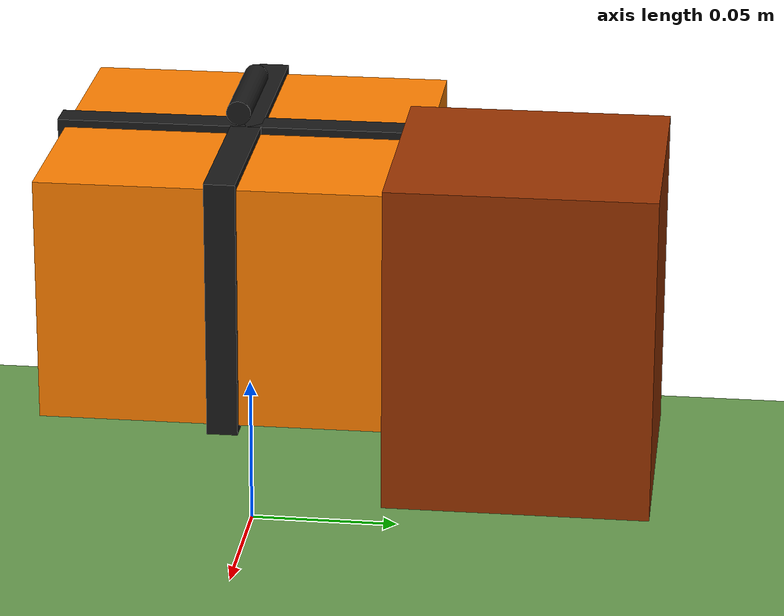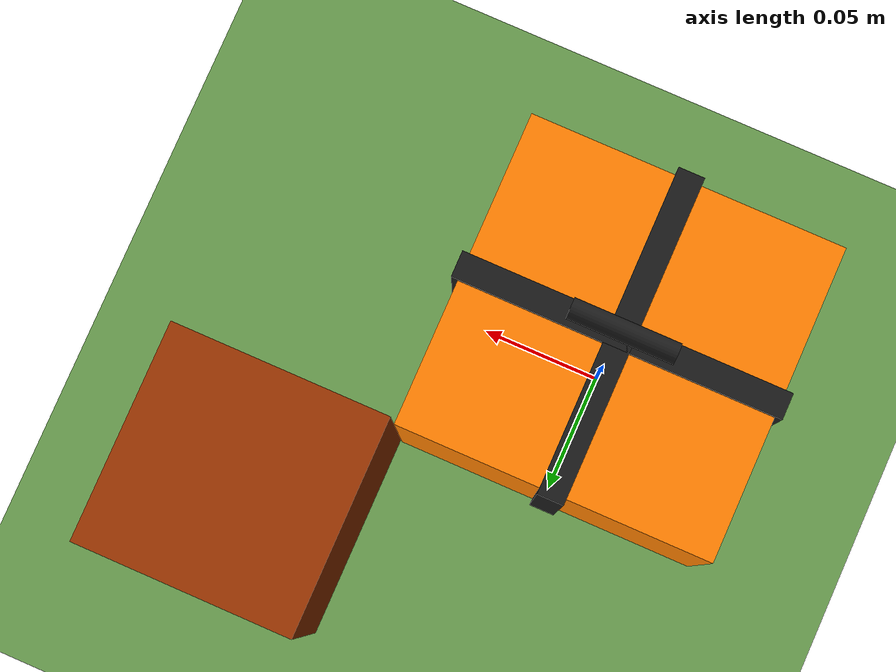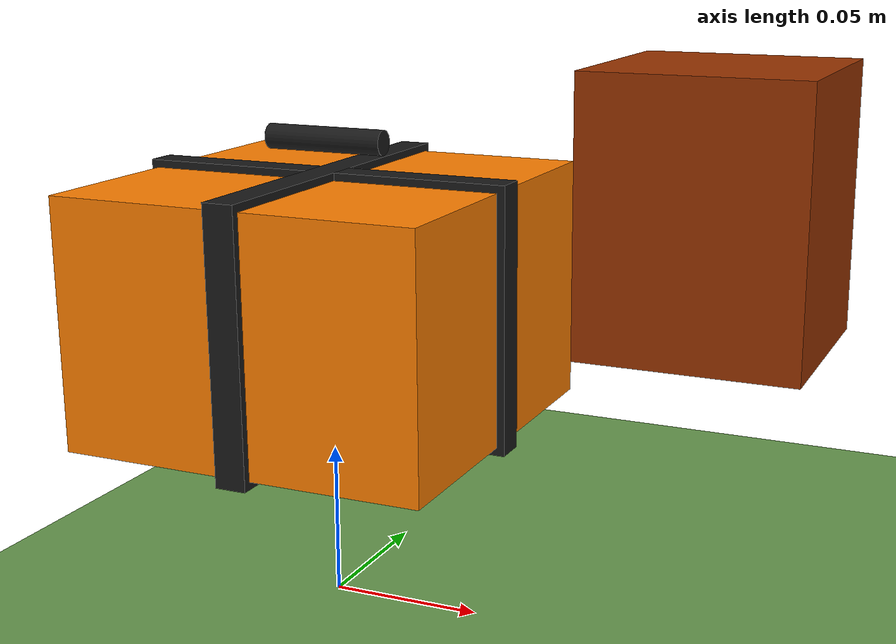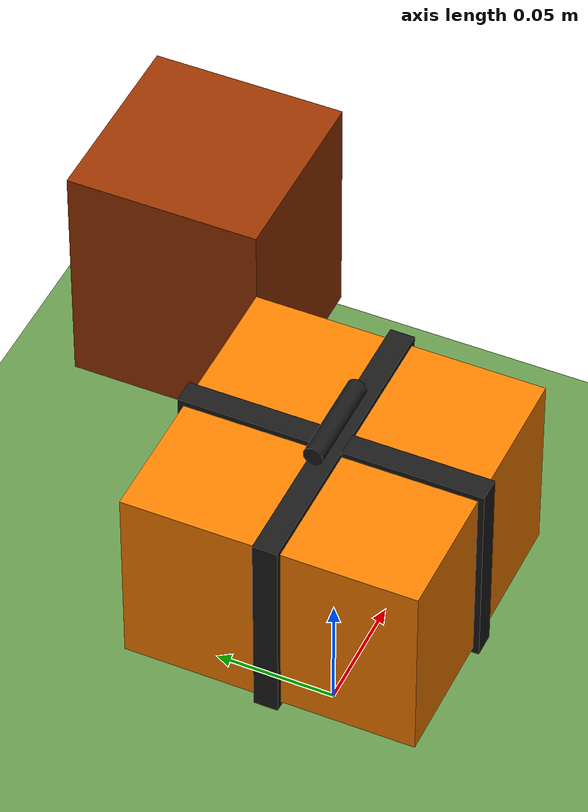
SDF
<sdf version="1.9">
 <world name="armax_hover">
  <physics name="1ms" type="dart">
   <dart><collision_detector>bullet</collision_detector></dart>
   <max_step_size>0.001</max_step_size>
   <real_time_factor>1.0</real_time_factor>
   <real_time_update_rate>1000</real_time_update_rate>
  </physics>
  <plugin filename="gz-sim-physics-system" name="gz::sim::systems::Physics"/>
  <plugin filename="gz-sim-user-commands-system" name="gz::sim::systems::UserCommands"/>
  <plugin filename="gz-sim-scene-broadcaster-system" name="gz::sim::systems::SceneBroadcaster"/>
  <plugin filename="gz-sim-sensors-system" name="gz::sim::systems::Sensors">
   <render_engine>ogre2</render_engine>
  </plugin>
  <plugin filename="gz-sim-imu-system" name="gz::sim::systems::Imu"/>
  <plugin filename="gz-sim-navsat-system" name="gz::sim::systems::NavSat"/>
  <scene>
   <ambient>0.4 0.4 0.4 1</ambient>
   <background>0.53 0.81 0.92 1</background>
   <shadows>false</shadows>
  </scene>
  <light type="directional" name="sun">
   <cast_shadows>false</cast_shadows>
   <pose>0 0 10 0 0 0</pose>
   <diffuse>0.9 0.9 0.9 1</diffuse>
   <specular>0.1 0.1 0.1 1</specular>
   <direction>-0.5 0.1 -0.9</direction>
  </light>
  <model name="ground_plane">
   <static>true</static>
   <link name="link">
    <collision name="collision">
     <geometry><plane><normal>0 0 1</normal><size>100 100</size></plane></geometry>
    </collision>
    <visual name="visual">
     <geometry><plane><normal>0 0 1</normal><size>100 100</size></plane></geometry>
     <material><ambient>0.4 0.6 0.3 1</ambient><diffuse>0.4 0.6 0.3 1</diffuse></material>
    </visual>
   </link>
  </model>
  <spherical_coordinates>
   <surface_model>EARTH_WGS84</surface_model>
   <latitude_deg>51.4769</latitude_deg>
   <longitude_deg>-0.0005</longitude_deg>
   <elevation>0</elevation>
   <heading_deg>0</heading_deg>
  </spherical_coordinates>
  <model name="payload">
   <pose>0 0 0.1 0 0 0</pose>
   <link name="payload_link">
    <inertial>
     <mass>0.5</mass>
     <pose>0.08 0.08 0 0 0 0</pose>
     <inertia>
      <ixx>0.003</ixx>
      <iyy>0.003</iyy>
      <izz>0.004</izz>
      <ixy>0.0005</ixy>
      <ixz>0.0002</ixz>
      <iyz>0.0002</iyz>
     </inertia>
    </inertial>
    <visual name="box_visual">
     <geometry><box><size>0.12 0.12 0.08</size></box></geometry>
     <material><ambient>1 0.5 0 1</ambient><diffuse>1 0.5 0 1</diffuse></material>
    </visual>
    <visual name="big_lump_visual">
     <pose>0.10 0.10 0.02 0 0 0</pose>
     <geometry><box><size>0.08 0.08 0.10</size></box></geometry>
     <material><ambient>0.6 0.2 0 1</ambient><diffuse>0.6 0.2 0 1</diffuse></material>
    </visual>
    <visual name="handle_visual">
     <pose>0 0 0.052 0 1.5708 0</pose>
     <geometry><cylinder><radius>0.004</radius><length>0.04</length></cylinder></geometry>
     <material><ambient>0.1 0.1 0.1 1</ambient><diffuse>0.1 0.1 0.1 1</diffuse></material>
    </visual>
    <visual name="strap1_visual">
     <geometry><box><size>0.125 0.01 0.085</size></box></geometry>
     <material><ambient>0.1 0.1 0.1 1</ambient><diffuse>0.1 0.1 0.1 1</diffuse></material>
    </visual>
    <visual name="strap2_visual">
     <pose>0 0 0 0 0 1.5708</pose>
     <geometry><box><size>0.125 0.01 0.085</size></box></geometry>
     <material><ambient>0.1 0.1 0.1 1</ambient><diffuse>0.1 0.1 0.1 1</diffuse></material>
    </visual>
    <collision name="collision"><geometry><box><size>0.12 0.12 0.08</size></box></geometry></collision>
   </link>
  </model>
 </world>
</sdf>
